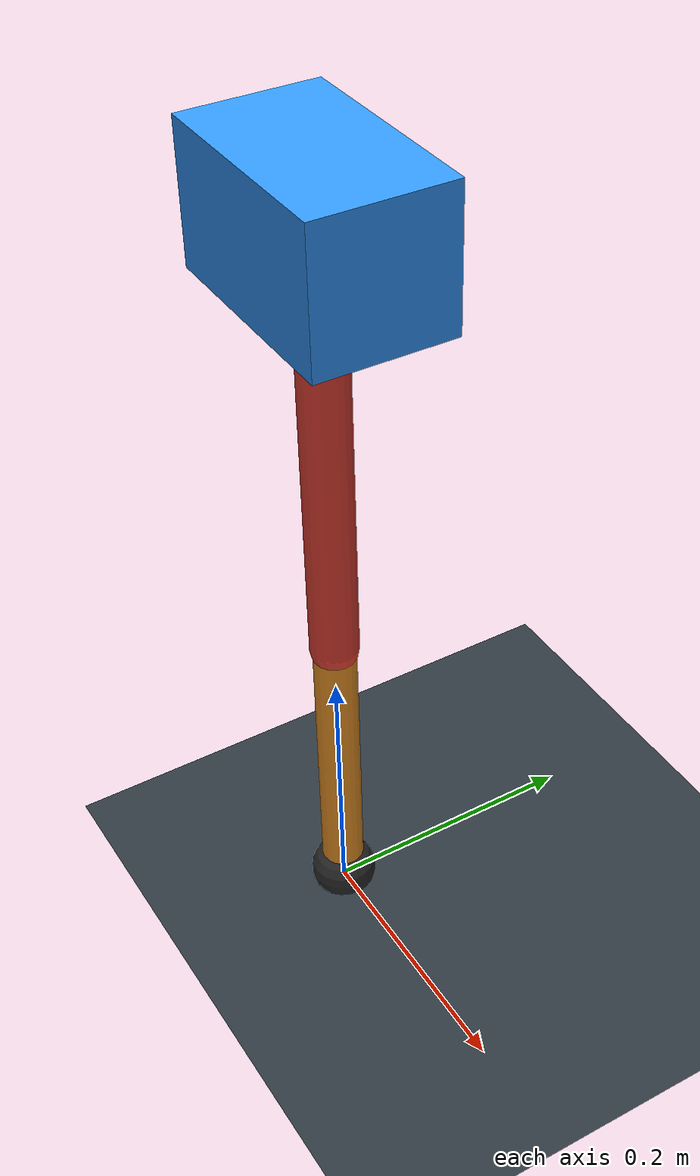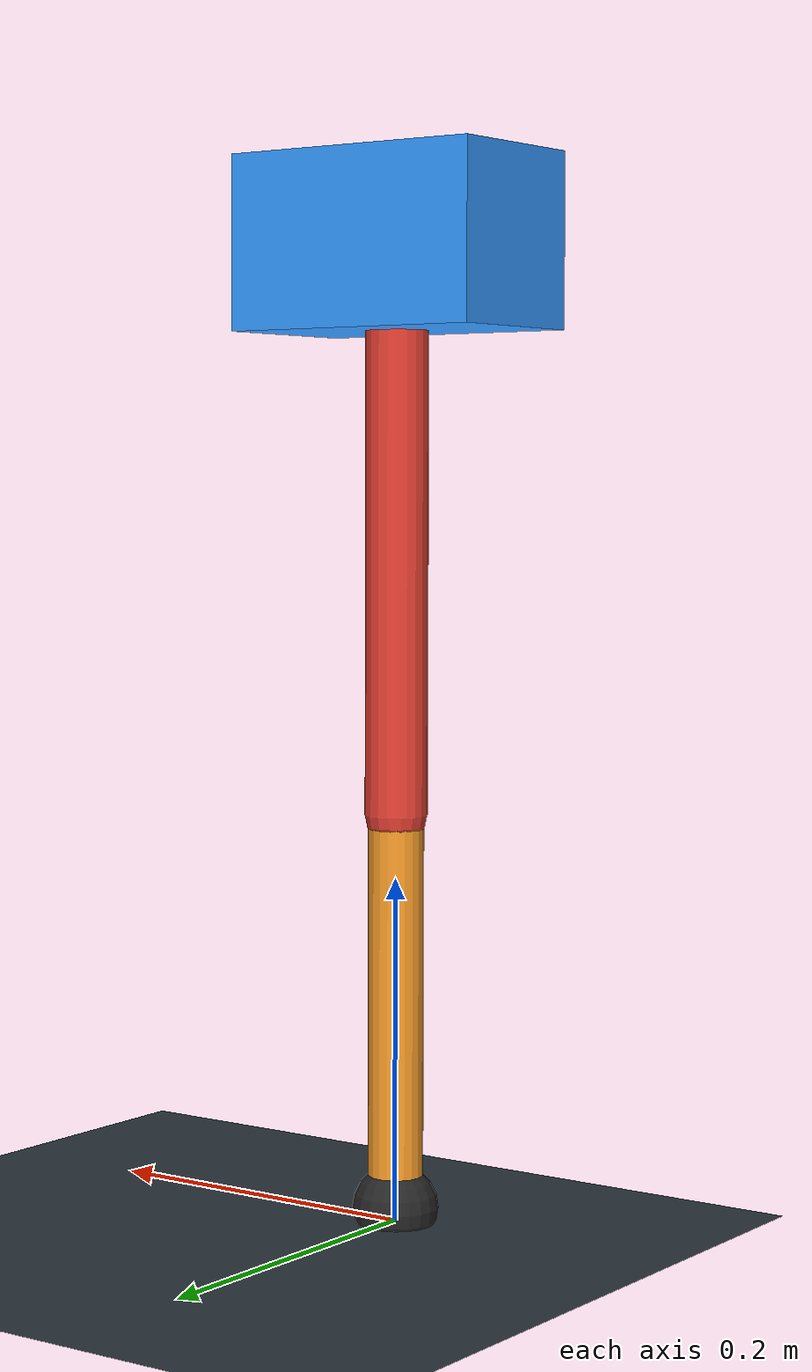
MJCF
<mujoco model="single_axis_two_bar">
  <compiler angle="radian" inertiafromgeom="true"/>
  <option timestep="0.001" integrator="implicitfast" gravity="0 0 -9.81"/>
  <default>
    <joint damping="0.08"/>
    <geom friction="1.2 0.01 0.0001" condim="3"/>
  </default>
  <worldbody>
    <geom name="floor" type="plane" size="5 5 0.1" rgba="0.18 0.22 0.25 1"/>
    <body name="carriage" pos="0 0 0.563865468467417">
      <joint name="pole_slide" type="slide" axis="0 0 1"/>
      <geom name="payload" type="box" size="0.08 0.05 0.05" mass="2.9876225481010583" rgba="0.2 0.6 1 1"/>
      <body name="thigh" pos="0 0 0">
        <joint name="hip" type="hinge" axis="0 1 0"/>
        <geom name="thigh_link" type="capsule" fromto="0 0 0 0 0 -0.32676215943301556" size="0.018" mass="0.23282235637700976" rgba="0.9 0.25 0.2 1"/>
        <body name="shank" pos="0 0 -0.32676215943301556">
          <joint name="knee" type="hinge" axis="0 1 0"/>
          <geom name="shank_link" type="capsule" fromto="0 0 0 0 0 -0.22876925135813592" size="0.016" mass="0.16300111451162136" rgba="0.95 0.6 0.15 1"/>
          <geom name="foot" type="sphere" pos="0 0 -0.22876925135813592" size="0.025" mass="0.03" rgba="0.15 0.15 0.15 1"/>
          <site name="toe" pos="0 0 -0.22876925135813592" size="0.008"/>
        </body>
      </body>
    </body>
  </worldbody>
  <actuator>
    <motor name="hip_motor" joint="hip" ctrlrange="-19.38982571408066 19.38982571408066"/>
    <motor name="knee_motor" joint="knee" ctrlrange="-142.21405827049233 142.21405827049233"/>
  </actuator>
</mujoco>
